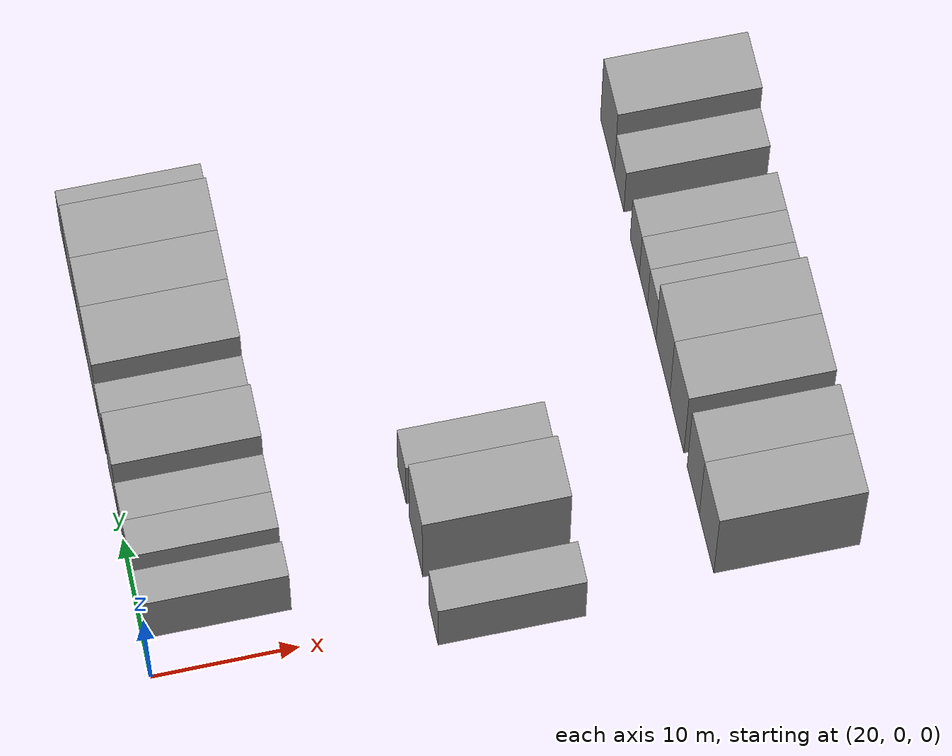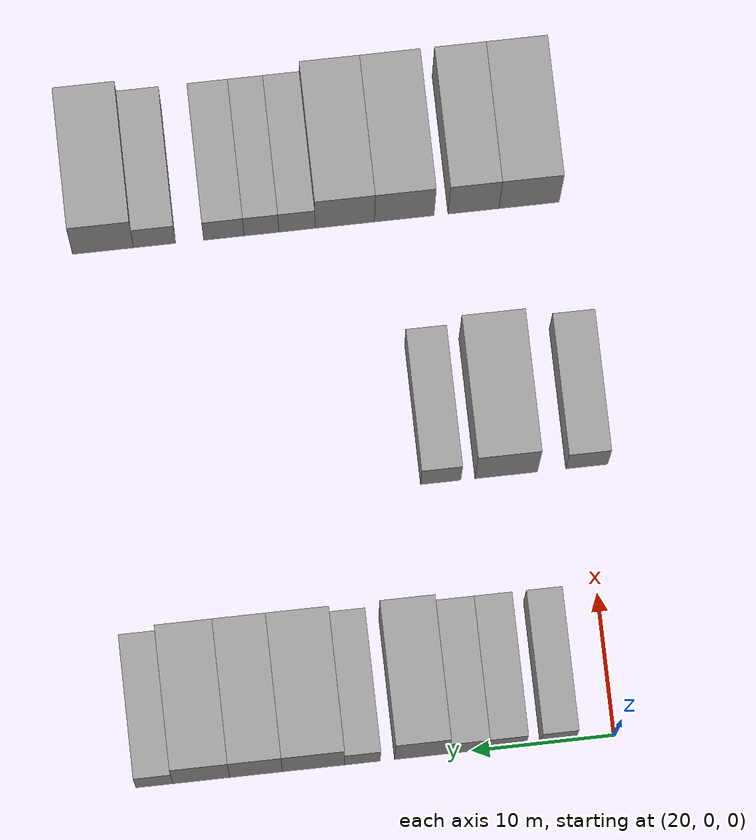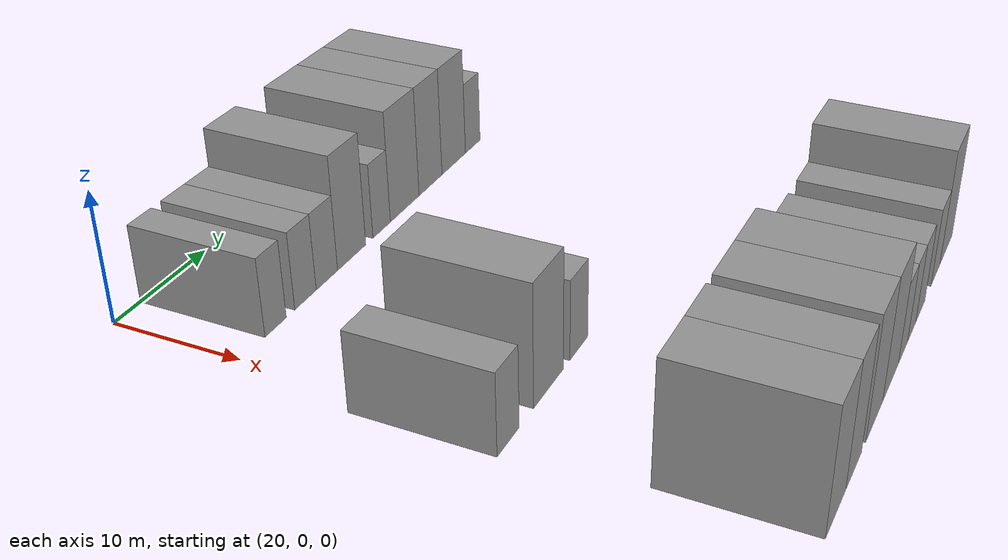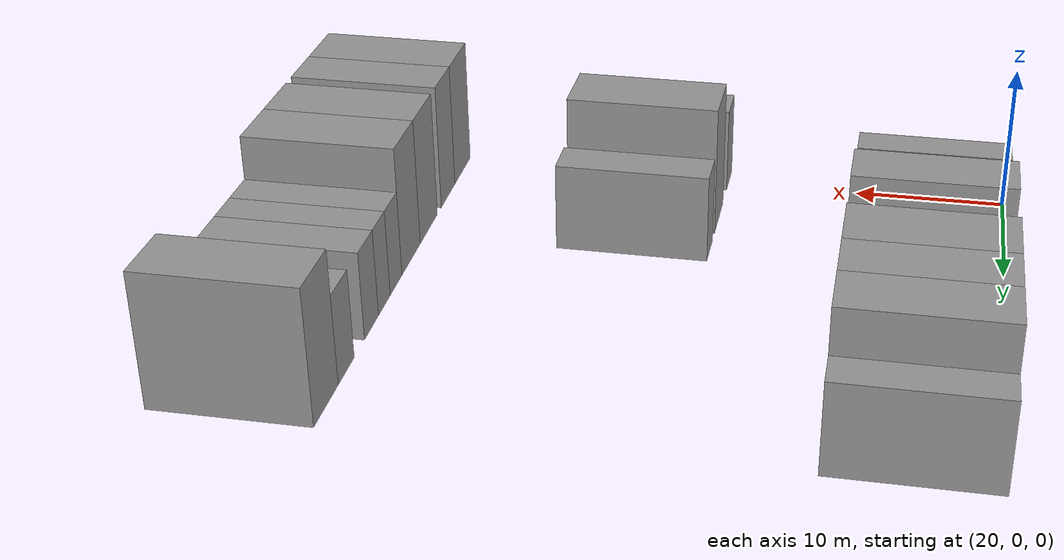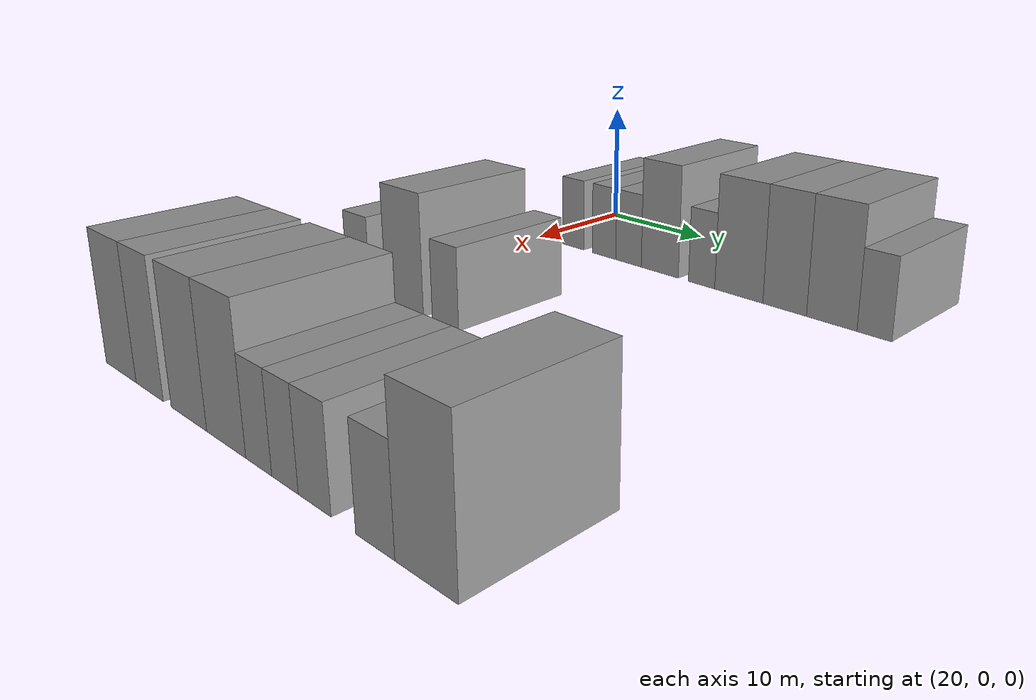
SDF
<sdf version="1.6">
 <world name="default">
  <model name="building_57">
   <static>1</static>
   <pose>25.0000 3.9664 0 0.000000 0.000000 0.000000</pose>
   <link name="link">
    <pose>0 0 3.00 0 0 0</pose>
    <collision name="collision"><geometry><box><size>10.0000 2.4766 6.0000</size></box></geometry></collision>
    <visual name="visual">
     <cast_shadows>0</cast_shadows>
     <geometry><box><size>10.0000 2.4766 6.0000</size></box></geometry>
     <material>
      <script>
       <uri>model://grey_wall/materials/scripts</uri>
       <uri>model://grey_wall/materials/textures</uri>
       <name>vrc/grey_wall</name>
      </script>
     </material>
    </visual>
   </link>
  </model>
  <model name="building_58">
   <static>1</static>
   <pose>25.0000 7.5182 0 0.000000 0.000000 0.000000</pose>
   <link name="link">
    <pose>0 0 3.00 0 0 0</pose>
    <collision name="collision"><geometry><box><size>10.0000 2.6270 6.0000</size></box></geometry></collision>
    <visual name="visual">
     <cast_shadows>0</cast_shadows>
     <geometry><box><size>10.0000 2.6270 6.0000</size></box></geometry>
     <material>
      <script>
       <uri>model://grey_wall/materials/scripts</uri>
       <uri>model://grey_wall/materials/textures</uri>
       <name>vrc/grey_wall</name>
      </script>
     </material>
    </visual>
   </link>
  </model>
  <model name="building_59">
   <static>1</static>
   <pose>25.0000 10.2033 0 0.000000 0.000000 0.000000</pose>
   <link name="link">
    <pose>0 0 3.00 0 0 0</pose>
    <collision name="collision"><geometry><box><size>10.0000 2.7432 6.0000</size></box></geometry></collision>
    <visual name="visual">
     <cast_shadows>0</cast_shadows>
     <geometry><box><size>10.0000 2.7432 6.0000</size></box></geometry>
     <material>
      <script>
       <uri>model://grey_wall/materials/scripts</uri>
       <uri>model://grey_wall/materials/textures</uri>
       <name>vrc/grey_wall</name>
      </script>
     </material>
    </visual>
   </link>
  </model>
  <model name="building_60">
   <static>1</static>
   <pose>25.0000 13.4718 0 0.000000 0.000000 0.000000</pose>
   <link name="link">
    <pose>0 0 4.50 0 0 0</pose>
    <collision name="collision"><geometry><box><size>10.0000 3.7939 9.0000</size></box></geometry></collision>
    <visual name="visual">
     <cast_shadows>0</cast_shadows>
     <geometry><box><size>10.0000 3.7939 9.0000</size></box></geometry>
     <material>
      <script>
       <uri>model://grey_wall/materials/scripts</uri>
       <uri>model://grey_wall/materials/textures</uri>
       <name>vrc/grey_wall</name>
      </script>
     </material>
    </visual>
   </link>
  </model>
  <model name="building_61">
   <static>1</static>
   <pose>25.0000 17.6209 0 0.000000 0.000000 0.000000</pose>
   <link name="link">
    <pose>0 0 3.00 0 0 0</pose>
    <collision name="collision"><geometry><box><size>10.0000 2.5042 6.0000</size></box></geometry></collision>
    <visual name="visual">
     <cast_shadows>0</cast_shadows>
     <geometry><box><size>10.0000 2.5042 6.0000</size></box></geometry>
     <material>
      <script>
       <uri>model://grey_wall/materials/scripts</uri>
       <uri>model://grey_wall/materials/textures</uri>
       <name>vrc/grey_wall</name>
      </script>
     </material>
    </visual>
   </link>
  </model>
  <model name="building_62">
   <static>1</static>
   <pose>25.0000 21.0425 0 0.000000 0.000000 0.000000</pose>
   <link name="link">
    <pose>0 0 4.50 0 0 0</pose>
    <collision name="collision"><geometry><box><size>10.0000 4.3391 9.0000</size></box></geometry></collision>
    <visual name="visual">
     <cast_shadows>0</cast_shadows>
     <geometry><box><size>10.0000 4.3391 9.0000</size></box></geometry>
     <material>
      <script>
       <uri>model://grey_wall/materials/scripts</uri>
       <uri>model://grey_wall/materials/textures</uri>
       <name>vrc/grey_wall</name>
      </script>
     </material>
    </visual>
   </link>
  </model>
  <model name="building_63">
   <static>1</static>
   <pose>25.0000 25.0427 0 0.000000 0.000000 0.000000</pose>
   <link name="link">
    <pose>0 0 4.50 0 0 0</pose>
    <collision name="collision"><geometry><box><size>10.0000 3.6613 9.0000</size></box></geometry></collision>
    <visual name="visual">
     <cast_shadows>0</cast_shadows>
     <geometry><box><size>10.0000 3.6613 9.0000</size></box></geometry>
     <material>
      <script>
       <uri>model://grey_wall/materials/scripts</uri>
       <uri>model://grey_wall/materials/textures</uri>
       <name>vrc/grey_wall</name>
      </script>
     </material>
    </visual>
   </link>
  </model>
  <model name="building_64">
   <static>1</static>
   <pose>25.0000 28.8501 0 0.000000 0.000000 0.000000</pose>
   <link name="link">
    <pose>0 0 4.50 0 0 0</pose>
    <collision name="collision"><geometry><box><size>10.0000 3.9537 9.0000</size></box></geometry></collision>
    <visual name="visual">
     <cast_shadows>0</cast_shadows>
     <geometry><box><size>10.0000 3.9537 9.0000</size></box></geometry>
     <material>
      <script>
       <uri>model://grey_wall/materials/scripts</uri>
       <uri>model://grey_wall/materials/textures</uri>
       <name>vrc/grey_wall</name>
      </script>
     </material>
    </visual>
   </link>
  </model>
  <model name="building_65">
   <static>1</static>
   <pose>25.0000 32.1144 0 0.000000 0.000000 0.000000</pose>
   <link name="link">
    <pose>0 0 3.00 0 0 0</pose>
    <collision name="collision"><geometry><box><size>10.0000 2.5749 6.0000</size></box></geometry></collision>
    <visual name="visual">
     <cast_shadows>0</cast_shadows>
     <geometry><box><size>10.0000 2.5749 6.0000</size></box></geometry>
     <material>
      <script>
       <uri>model://grey_wall/materials/scripts</uri>
       <uri>model://grey_wall/materials/textures</uri>
       <name>vrc/grey_wall</name>
      </script>
     </material>
    </visual>
   </link>
  </model>
  <model name="building_170">
   <static>1</static>
   <pose>44.0000 -0.2909 0 0.000000 0.000000 0.000000</pose>
   <link name="link">
    <pose>0 0 3.00 0 0 0</pose>
    <collision name="collision"><geometry><box><size>10.0000 2.9525 6.0000</size></box></geometry></collision>
    <visual name="visual">
     <cast_shadows>0</cast_shadows>
     <geometry><box><size>10.0000 2.9525 6.0000</size></box></geometry>
     <material>
      <script>
       <uri>model://grey_wall/materials/scripts</uri>
       <uri>model://grey_wall/materials/textures</uri>
       <name>vrc/grey_wall</name>
      </script>
     </material>
    </visual>
   </link>
  </model>
  <model name="building_171">
   <static>1</static>
   <pose>44.0000 5.3849 0 0.000000 0.000000 0.000000</pose>
   <link name="link">
    <pose>0 0 4.50 0 0 0</pose>
    <collision name="collision"><geometry><box><size>10.0000 4.3991 9.0000</size></box></geometry></collision>
    <visual name="visual">
     <cast_shadows>0</cast_shadows>
     <geometry><box><size>10.0000 4.3991 9.0000</size></box></geometry>
     <material>
      <script>
       <uri>model://grey_wall/materials/scripts</uri>
       <uri>model://grey_wall/materials/textures</uri>
       <name>vrc/grey_wall</name>
      </script>
     </material>
    </visual>
   </link>
  </model>
  <model name="building_172">
   <static>1</static>
   <pose>44.0000 10.0025 0 0.000000 0.000000 0.000000</pose>
   <link name="link">
    <pose>0 0 3.00 0 0 0</pose>
    <collision name="collision"><geometry><box><size>10.0000 2.8360 6.0000</size></box></geometry></collision>
    <visual name="visual">
     <cast_shadows>0</cast_shadows>
     <geometry><box><size>10.0000 2.8360 6.0000</size></box></geometry>
     <material>
      <script>
       <uri>model://grey_wall/materials/scripts</uri>
       <uri>model://grey_wall/materials/textures</uri>
       <name>vrc/grey_wall</name>
      </script>
     </material>
    </visual>
   </link>
  </model>
  <model name="building_282">
   <static>1</static>
   <pose>63.0000 1.5825 0 0.000000 0.000000 0.000000</pose>
   <link name="link">
    <pose>0 0 4.50 0 0 0</pose>
    <collision name="collision"><geometry><box><size>10.0000 4.2855 9.0000</size></box></geometry></collision>
    <visual name="visual">
     <cast_shadows>0</cast_shadows>
     <geometry><box><size>10.0000 4.2855 9.0000</size></box></geometry>
     <material>
      <script>
       <uri>model://grey_wall/materials/scripts</uri>
       <uri>model://grey_wall/materials/textures</uri>
       <name>vrc/grey_wall</name>
      </script>
     </material>
    </visual>
   </link>
  </model>
  <model name="building_283">
   <static>1</static>
   <pose>63.0000 5.5296 0 0.000000 0.000000 0.000000</pose>
   <link name="link">
    <pose>0 0 4.50 0 0 0</pose>
    <collision name="collision"><geometry><box><size>10.0000 3.6086 9.0000</size></box></geometry></collision>
    <visual name="visual">
     <cast_shadows>0</cast_shadows>
     <geometry><box><size>10.0000 3.6086 9.0000</size></box></geometry>
     <material>
      <script>
       <uri>model://grey_wall/materials/scripts</uri>
       <uri>model://grey_wall/materials/textures</uri>
       <name>vrc/grey_wall</name>
      </script>
     </material>
    </visual>
   </link>
  </model>
  <model name="building_284">
   <static>1</static>
   <pose>63.0000 10.4511 0 0.000000 0.000000 0.000000</pose>
   <link name="link">
    <pose>0 0 4.50 0 0 0</pose>
    <collision name="collision"><geometry><box><size>10.0000 4.2343 9.0000</size></box></geometry></collision>
    <visual name="visual">
     <cast_shadows>0</cast_shadows>
     <geometry><box><size>10.0000 4.2343 9.0000</size></box></geometry>
     <material>
      <script>
       <uri>model://grey_wall/materials/scripts</uri>
       <uri>model://grey_wall/materials/textures</uri>
       <name>vrc/grey_wall</name>
      </script>
     </material>
    </visual>
   </link>
  </model>
  <model name="building_285">
   <static>1</static>
   <pose>63.0000 14.6779 0 0.000000 0.000000 0.000000</pose>
   <link name="link">
    <pose>0 0 4.50 0 0 0</pose>
    <collision name="collision"><geometry><box><size>10.0000 4.2193 9.0000</size></box></geometry></collision>
    <visual name="visual">
     <cast_shadows>0</cast_shadows>
     <geometry><box><size>10.0000 4.2193 9.0000</size></box></geometry>
     <material>
      <script>
       <uri>model://grey_wall/materials/scripts</uri>
       <uri>model://grey_wall/materials/textures</uri>
       <name>vrc/grey_wall</name>
      </script>
     </material>
    </visual>
   </link>
  </model>
  <model name="building_286">
   <static>1</static>
   <pose>63.0000 18.0796 0 0.000000 0.000000 0.000000</pose>
   <link name="link">
    <pose>0 0 3.00 0 0 0</pose>
    <collision name="collision"><geometry><box><size>10.0000 2.5841 6.0000</size></box></geometry></collision>
    <visual name="visual">
     <cast_shadows>0</cast_shadows>
     <geometry><box><size>10.0000 2.5841 6.0000</size></box></geometry>
     <material>
      <script>
       <uri>model://grey_wall/materials/scripts</uri>
       <uri>model://grey_wall/materials/textures</uri>
       <name>vrc/grey_wall</name>
      </script>
     </material>
    </visual>
   </link>
  </model>
  <model name="building_287">
   <static>1</static>
   <pose>63.0000 20.6042 0 0.000000 0.000000 0.000000</pose>
   <link name="link">
    <pose>0 0 3.00 0 0 0</pose>
    <collision name="collision"><geometry><box><size>10.0000 2.4650 6.0000</size></box></geometry></collision>
    <visual name="visual">
     <cast_shadows>0</cast_shadows>
     <geometry><box><size>10.0000 2.4650 6.0000</size></box></geometry>
     <material>
      <script>
       <uri>model://grey_wall/materials/scripts</uri>
       <uri>model://grey_wall/materials/textures</uri>
       <name>vrc/grey_wall</name>
      </script>
     </material>
    </visual>
   </link>
  </model>
  <model name="building_288">
   <static>1</static>
   <pose>63.0000 23.2620 0 0.000000 0.000000 0.000000</pose>
   <link name="link">
    <pose>0 0 3.00 0 0 0</pose>
    <collision name="collision"><geometry><box><size>10.0000 2.8506 6.0000</size></box></geometry></collision>
    <visual name="visual">
     <cast_shadows>0</cast_shadows>
     <geometry><box><size>10.0000 2.8506 6.0000</size></box></geometry>
     <material>
      <script>
       <uri>model://grey_wall/materials/scripts</uri>
       <uri>model://grey_wall/materials/textures</uri>
       <name>vrc/grey_wall</name>
      </script>
     </material>
    </visual>
   </link>
  </model>
  <model name="building_289">
   <static>1</static>
   <pose>63.0000 28.1749 0 0.000000 0.000000 0.000000</pose>
   <link name="link">
    <pose>0 0 3.00 0 0 0</pose>
    <collision name="collision"><geometry><box><size>10.0000 2.9751 6.0000</size></box></geometry></collision>
    <visual name="visual">
     <cast_shadows>0</cast_shadows>
     <geometry><box><size>10.0000 2.9751 6.0000</size></box></geometry>
     <material>
      <script>
       <uri>model://grey_wall/materials/scripts</uri>
       <uri>model://grey_wall/materials/textures</uri>
       <name>vrc/grey_wall</name>
      </script>
     </material>
    </visual>
   </link>
  </model>
  <model name="building_290">
   <static>1</static>
   <pose>63.0000 31.8278 0 0.000000 0.000000 0.000000</pose>
   <link name="link">
    <pose>0 0 4.50 0 0 0</pose>
    <collision name="collision"><geometry><box><size>10.0000 4.3307 9.0000</size></box></geometry></collision>
    <visual name="visual">
     <cast_shadows>0</cast_shadows>
     <geometry><box><size>10.0000 4.3307 9.0000</size></box></geometry>
     <material>
      <script>
       <uri>model://grey_wall/materials/scripts</uri>
       <uri>model://grey_wall/materials/textures</uri>
       <name>vrc/grey_wall</name>
      </script>
     </material>
    </visual>
   </link>
  </model>
 </world>
</sdf>
